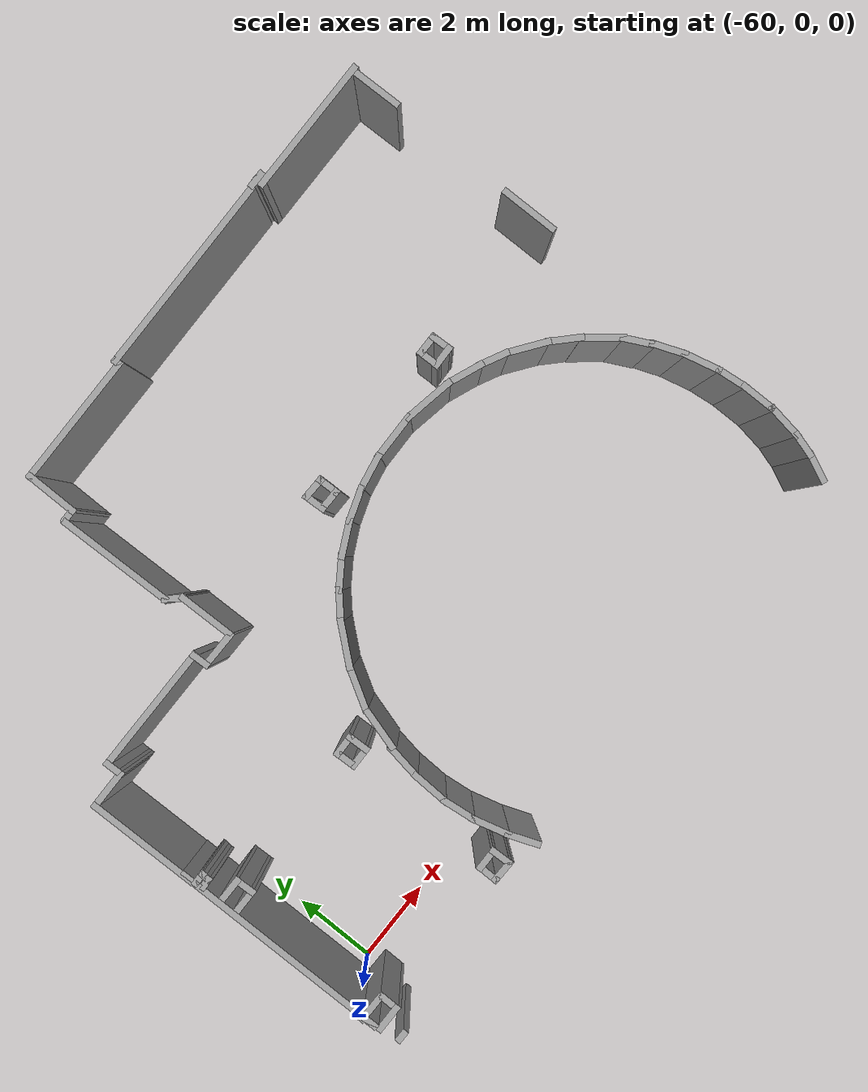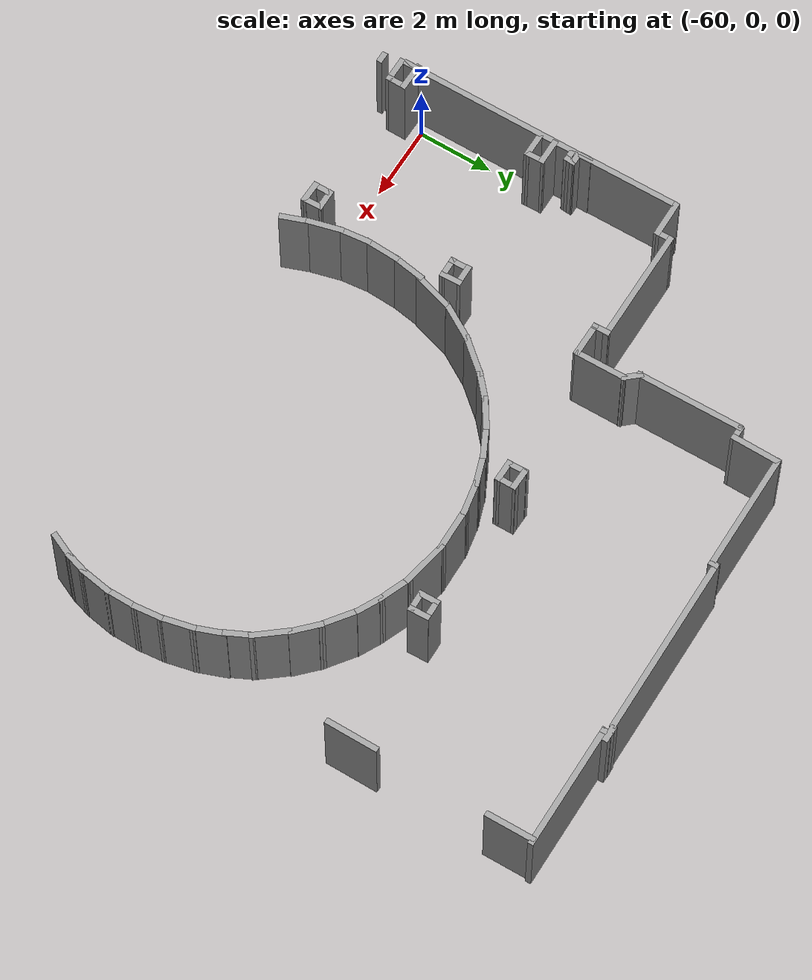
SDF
<sdf version="1.7">
 <model name="TD1-Mapa">
  <pose>-6.249136 -5.50363 0 0 -0 0</pose>
  <link name="Wall_155">
   <collision name="Wall_155_Collision">
    <geometry><box><size>0.3083373 0.15 2.5</size></box></geometry>
    <pose>0 0 1.25 0 -0 0</pose>
   </collision>
   <visual name="Wall_155_Visual">
    <pose>0 0 1.25 0 -0 0</pose>
    <geometry><box><size>0.3083373 0.15 2.5</size></box></geometry>
    <material>
     <script><uri>file://media/materials/scripts/gazebo.material</uri><name>Gazebo/Grey</name></script>
     <ambient>1 1 1 1</ambient>
    </material>
    <meta><layer>0</layer></meta>
   </visual>
   <pose>-53.88823 4.284538 0 0 -0 3.141539</pose>
  </link>
  <link name="Wall_157">
   <collision name="Wall_157_Collision">
    <geometry><box><size>0.7059333 0.15 2.5</size></box></geometry>
    <pose>0 0 1.25 0 -0 0</pose>
   </collision>
   <visual name="Wall_157_Visual">
    <pose>0 0 1.25 0 -0 0</pose>
    <geometry><box><size>0.7059333 0.15 2.5</size></box></geometry>
    <material>
     <script><uri>file://media/materials/scripts/gazebo.material</uri><name>Gazebo/Grey</name></script>
     <ambient>1 1 1 1</ambient>
    </material>
    <meta><layer>0</layer></meta>
   </visual>
   <pose>-53.76383 4.750032 0 0 -0 0</pose>
  </link>
  <link name="Wall_158">
   <collision name="Wall_158_Collision">
    <geometry><box><size>0.5670303 0.15 2.5</size></box></geometry>
    <pose>0 0 1.25 0 -0 0</pose>
   </collision>
   <visual name="Wall_158_Visual">
    <pose>0 0 1.25 0 -0 0</pose>
    <geometry><box><size>0.5670303 0.15 2.5</size></box></geometry>
    <material>
     <script><uri>file://media/materials/scripts/gazebo.material</uri><name>Gazebo/Grey</name></script>
     <ambient>1 1 1 1</ambient>
    </material>
    <meta><layer>0</layer></meta>
   </visual>
   <pose>-53.48263 4.958439 0 0 -0 1.555239</pose>
  </link>
  <link name="Wall_159">
   <collision name="Wall_159_Collision">
    <geometry><box><size>0.7835343 0.15 2.5</size></box></geometry>
    <pose>0 0 1.25 0 -0 0</pose>
   </collision>
   <visual name="Wall_159_Visual">
    <pose>0 0 1.25 0 -0 0</pose>
    <geometry><box><size>0.7835343 0.15 2.5</size></box></geometry>
    <material>
     <script><uri>file://media/materials/scripts/gazebo.material</uri><name>Gazebo/Grey</name></script>
     <ambient>1 1 1 1</ambient>
    </material>
    <meta><layer>0</layer></meta>
   </visual>
   <pose>-53.79613 5.171832 0 0 -0 3.126239</pose>
  </link>
  <link name="Wall_162">
   <collision name="Wall_162_Collision">
    <geometry><box><size>0.5508303 0.15 2.5</size></box></geometry>
    <pose>0 0 1.25 0 -0 0</pose>
   </collision>
   <visual name="Wall_162_Visual">
    <pose>0 0 1.25 0 -0 0</pose>
    <geometry><box><size>0.5508303 0.15 2.5</size></box></geometry>
    <material>
     <script><uri>file://media/materials/scripts/gazebo.material</uri><name>Gazebo/Grey</name></script>
     <ambient>1 1 1 1</ambient>
    </material>
    <meta><layer>0</layer></meta>
   </visual>
   <pose>-54.074235 5.082933 0 0 -0 1.578836</pose>
  </link>
  <link name="Wall_166">
   <collision name="Wall_166_Collision">
    <geometry><box><size>5.365332 0.15 2.5</size></box></geometry>
    <pose>0 0 1.25 0 -0 0</pose>
   </collision>
   <visual name="Wall_166_Visual">
    <pose>0 0 1.25 0 -0 0</pose>
    <geometry><box><size>5.365332 0.15 2.5</size></box></geometry>
    <material>
     <script><uri>file://media/materials/scripts/gazebo.material</uri><name>Gazebo/Grey</name></script>
     <ambient>1 1 1 1</ambient>
    </material>
    <meta><layer>0</layer></meta>
   </visual>
   <pose>-54.07433 7.49023 0 0 -0 -1.569936</pose>
  </link>
  <link name="Wall_169">
   <collision name="Wall_169_Collision">
    <geometry><box><size>0.3019333 0.15 2.5</size></box></geometry>
    <pose>0 0 1.25 0 -0 0</pose>
   </collision>
   <visual name="Wall_169_Visual">
    <pose>0 0 1.25 0 -0 0</pose>
    <geometry><box><size>0.3019333 0.15 2.5</size></box></geometry>
    <material>
     <script><uri>file://media/materials/scripts/gazebo.material</uri><name>Gazebo/Grey</name></script>
     <ambient>1 1 1 1</ambient>
    </material>
    <meta><layer>0</layer></meta>
   </visual>
   <pose>-53.82243 9.706438 0 0 -0 -1.644135</pose>
  </link>
  <link name="Wall_170">
   <collision name="Wall_170_Collision">
    <geometry><box><size>0.3436333 0.15 2.5</size></box></geometry>
    <pose>0 0 1.25 0 -0 0</pose>
   </collision>
   <visual name="Wall_170_Visual">
    <pose>0 0 1.25 0 -0 0</pose>
    <geometry><box><size>0.3436333 0.15 2.5</size></box></geometry>
    <material>
     <script><uri>file://media/materials/scripts/gazebo.material</uri><name>Gazebo/Grey</name></script>
     <ambient>1 1 1 1</ambient>
    </material>
    <meta><layer>0</layer></meta>
   </visual>
   <pose>-53.92463 9.624931 0 0 -0 -3.082834</pose>
  </link>
  <link name="Wall_173">
   <collision name="Wall_173_Collision">
    <geometry><box><size>0.3916333 0.15 2.5</size></box></geometry>
    <pose>0 0 1.25 0 -0 0</pose>
   </collision>
   <visual name="Wall_173_Visual">
    <pose>0 0 1.25 0 -0 0</pose>
    <geometry><box><size>0.3916333 0.15 2.5</size></box></geometry>
    <material>
     <script><uri>file://media/materials/scripts/gazebo.material</uri><name>Gazebo/Grey</name></script>
     <ambient>1 1 1 1</ambient>
    </material>
    <meta><layer>0</layer></meta>
   </visual>
   <pose>-53.93463 9.796237 0 0 -0 0.0153383</pose>
  </link>
  <link name="Wall_175">
   <collision name="Wall_175_Collision">
    <geometry><box><size>0.7298363 0.15 2.5</size></box></geometry>
    <pose>0 0 1.25 0 -0 0</pose>
   </collision>
   <visual name="Wall_175_Visual">
    <pose>0 0 1.25 0 -0 0</pose>
    <geometry><box><size>0.7298363 0.15 2.5</size></box></geometry>
    <material>
     <script><uri>file://media/materials/scripts/gazebo.material</uri><name>Gazebo/Grey</name></script>
     <ambient>1 1 1 1</ambient>
    </material>
    <meta><layer>0</layer></meta>
   </visual>
   <pose>-53.75063 9.129036 0 0 -0 0</pose>
  </link>
  <link name="Wall_176">
   <collision name="Wall_176_Collision">
    <geometry><box><size>0.5515393 0.15 2.5</size></box></geometry>
    <pose>0 0 1.25 0 -0 0</pose>
   </collision>
   <visual name="Wall_176_Visual">
    <pose>0 0 1.25 0 -0 0</pose>
    <geometry><box><size>0.5515393 0.15 2.5</size></box></geometry>
    <material>
     <script><uri>file://media/materials/scripts/gazebo.material</uri><name>Gazebo/Grey</name></script>
     <ambient>1 1 1 1</ambient>
    </material>
    <meta><layer>0</layer></meta>
   </visual>
   <pose>-53.45513 8.928334 0 0 -0 -1.543033</pose>
  </link>
  <link name="Wall_177">
   <collision name="Wall_177_Collision">
    <geometry><box><size>0.7112373 0.15 2.5</size></box></geometry>
    <pose>0 0 1.25 0 -0 0</pose>
   </collision>
   <visual name="Wall_177_Visual">
    <pose>0 0 1.25 0 -0 0</pose>
    <geometry><box><size>0.7112373 0.15 2.5</size></box></geometry>
    <material>
     <script><uri>file://media/materials/scripts/gazebo.material</uri><name>Gazebo/Grey</name></script>
     <ambient>1 1 1 1</ambient>
    </material>
    <meta><layer>0</layer></meta>
   </visual>
   <pose>-53.73013 8.727632 0 0 -0 3.141539</pose>
  </link>
  <link name="Wall_179">
   <collision name="Wall_179_Collision">
    <geometry><box><size>2.78163 0.15 2.5</size></box></geometry>
    <pose>0 0 1.25 0 -0 0</pose>
   </collision>
   <visual name="Wall_179_Visual">
    <pose>0 0 1.25 0 -0 0</pose>
    <geometry><box><size>2.78163 0.15 2.5</size></box></geometry>
    <material>
     <script><uri>file://media/materials/scripts/gazebo.material</uri><name>Gazebo/Grey</name></script>
     <ambient>1 1 1 1</ambient>
    </material>
    <meta><layer>0</layer></meta>
   </visual>
   <pose>-54.09353 11.20193 0 0 -0 -1.565038</pose>
  </link>
  <link name="Wall_181">
   <collision name="Wall_181_Collision">
    <geometry><box><size>1.031938 0.15 2.5</size></box></geometry>
    <pose>0 0 1.25 0 -0 0</pose>
   </collision>
   <visual name="Wall_181_Visual">
    <pose>0 0 1.25 0 -0 0</pose>
    <geometry><box><size>1.031938 0.15 2.5</size></box></geometry>
    <material>
     <script><uri>file://media/materials/scripts/gazebo.material</uri><name>Gazebo/Grey</name></script>
     <ambient>1 1 1 1</ambient>
    </material>
    <meta><layer>0</layer></meta>
   </visual>
   <pose>-53.66 12.52073 0 0 -0 0.0067373</pose>
  </link>
  <link name="Wall_182">
   <collision name="Wall_182_Collision">
    <geometry><box><size>0.4990353 0.15 2.5</size></box></geometry>
    <pose>0 0 1.25 0 -0 0</pose>
   </collision>
   <visual name="Wall_182_Visual">
    <pose>0 0 1.25 0 -0 0</pose>
    <geometry><box><size>0.4990353 0.15 2.5</size></box></geometry>
    <material>
     <script><uri>file://media/materials/scripts/gazebo.material</uri><name>Gazebo/Grey</name></script>
     <ambient>1 1 1 1</ambient>
    </material>
    <meta><layer>0</layer></meta>
   </visual>
   <pose>-53.22153 12.69823 0 0 -0 1.584838</pose>
  </link>
  <link name="Wall_183">
   <collision name="Wall_183_Collision">
    <geometry><box><size>3.133932 0.15 2.5</size></box></geometry>
    <pose>0 0 1.25 0 -0 0</pose>
   </collision>
   <visual name="Wall_183_Visual">
    <pose>0 0 1.25 0 -0 0</pose>
    <geometry><box><size>3.133932 0.15 2.5</size></box></geometry>
    <material>
     <script><uri>file://media/materials/scripts/gazebo.material</uri><name>Gazebo/Grey</name></script>
     <ambient>1 1 1 1</ambient>
    </material>
    <meta><layer>0</layer></meta>
   </visual>
   <pose>-51.732 12.86773 0 0 -0 -0.0032393</pose>
  </link>
  <link name="Wall_184">
   <collision name="Wall_184_Collision">
    <geometry><box><size>0.4795303 0.15 2.5</size></box></geometry>
    <pose>0 0 1.25 0 -0 0</pose>
   </collision>
   <visual name="Wall_184_Visual">
    <pose>0 0 1.25 0 -0 0</pose>
    <geometry><box><size>0.4795303 0.15 2.5</size></box></geometry>
    <material>
     <script><uri>file://media/materials/scripts/gazebo.material</uri><name>Gazebo/Grey</name></script>
     <ambient>1 1 1 1</ambient>
    </material>
    <meta><layer>0</layer></meta>
   </visual>
   <pose>-50.24523 12.69823 0 0 -0 -1.540935</pose>
  </link>
  <link name="Wall_185">
   <collision name="Wall_185_Collision">
    <geometry><box><size>0.9611363 0.15 2.5</size></box></geometry>
    <pose>0 0 1.25 0 -0 0</pose>
   </collision>
   <visual name="Wall_185_Visual">
    <pose>0 0 1.25 0 -0 0</pose>
    <geometry><box><size>0.9611363 0.15 2.5</size></box></geometry>
    <material>
     <script><uri>file://media/materials/scripts/gazebo.material</uri><name>Gazebo/Grey</name></script>
     <ambient>1 1 1 1</ambient>
    </material>
    <meta><layer>0</layer></meta>
   </visual>
   <pose>-49.82473 12.52863 0 0 -0 -0.0121323</pose>
  </link>
  <link name="Wall_187">
   <collision name="Wall_187_Collision">
    <geometry><box><size>1.389434 0.15 2.5</size></box></geometry>
    <pose>0 0 1.25 0 -0 0</pose>
   </collision>
   <visual name="Wall_187_Visual">
    <pose>0 0 1.25 0 -0 0</pose>
    <geometry><box><size>1.389434 0.15 2.5</size></box></geometry>
    <material>
     <script><uri>file://media/materials/scripts/gazebo.material</uri><name>Gazebo/Grey</name></script>
     <ambient>1 1 1 1</ambient>
    </material>
    <meta><layer>0</layer></meta>
   </visual>
   <pose>-49.41843 13.19363 0 0 -0 1.579937</pose>
  </link>
  <link name="Wall_188">
   <collision name="Wall_188_Collision">
    <geometry><box><size>0.5447303 0.15 2.5</size></box></geometry>
    <pose>0 0 1.25 0 -0 0</pose>
   </collision>
   <visual name="Wall_188_Visual">
    <pose>0 0 1.25 0 -0 0</pose>
    <geometry><box><size>0.5447303 0.15 2.5</size></box></geometry>
    <material>
     <script><uri>file://media/materials/scripts/gazebo.material</uri><name>Gazebo/Grey</name></script>
     <ambient>1 1 1 1</ambient>
    </material>
    <meta><layer>0</layer></meta>
   </visual>
   <pose>-49.55483 13.96123 0 0 -0 2.295035</pose>
  </link>
  <link name="Wall_189">
   <collision name="Wall_189_Collision">
    <geometry><box><size>2.856339 0.15 2.5</size></box></geometry>
    <pose>0 0 1.25 0 -0 0</pose>
   </collision>
   <visual name="Wall_189_Visual">
    <pose>0 0 1.25 0 -0 0</pose>
    <geometry><box><size>2.856339 0.15 2.5</size></box></geometry>
    <material>
     <script><uri>file://media/materials/scripts/gazebo.material</uri><name>Gazebo/Grey</name></script>
     <ambient>1 1 1 1</ambient>
    </material>
    <meta><layer>0</layer></meta>
   </visual>
   <pose>-49.70263 15.45073 0 0 -0 1.58343</pose>
  </link>
  <link name="Wall_192">
   <collision name="Wall_192_Collision">
    <geometry><box><size>0.411637 0.15 2.5</size></box></geometry>
    <pose>0 0 1.25 0 -0 0</pose>
   </collision>
   <visual name="Wall_192_Visual">
    <pose>0 0 1.25 0 -0 0</pose>
    <geometry><box><size>0.411637 0.15 2.5</size></box></geometry>
    <material>
     <script><uri>file://media/materials/scripts/gazebo.material</uri><name>Gazebo/Grey</name></script>
     <ambient>1 1 1 1</ambient>
    </material>
    <meta><layer>0</layer></meta>
   </visual>
   <pose>-49.56023 16.84133 0 0 -0 0</pose>
  </link>
  <link name="Wall_193">
   <collision name="Wall_193_Collision">
    <geometry><box><size>1.323837 0.15 2.5</size></box></geometry>
    <pose>0 0 1.25 0 -0 0</pose>
   </collision>
   <visual name="Wall_193_Visual">
    <pose>0 0 1.25 0 -0 0</pose>
    <geometry><box><size>1.323837 0.15 2.5</size></box></geometry>
    <material>
     <script><uri>file://media/materials/scripts/gazebo.material</uri><name>Gazebo/Grey</name></script>
     <ambient>1 1 1 1</ambient>
    </material>
    <meta><layer>0</layer></meta>
   </visual>
   <pose>-49.42193 17.42823 0 0 -0 1.558036</pose>
  </link>
  <link name="Wall_194">
   <collision name="Wall_194_Collision">
    <geometry><box><size>3.240233 0.15 2.5</size></box></geometry>
    <pose>0 0 1.25 0 -0 0</pose>
   </collision>
   <visual name="Wall_194_Visual">
    <pose>0 0 1.25 0 -0 0</pose>
    <geometry><box><size>3.240233 0.15 2.5</size></box></geometry>
    <material>
     <script><uri>file://media/materials/scripts/gazebo.material</uri><name>Gazebo/Grey</name></script>
     <ambient>1 1 1 1</ambient>
    </material>
    <meta><layer>0</layer></meta>
   </visual>
   <pose>-47.87433 18.01513 0 0 -0 0</pose>
  </link>
  <link name="Wall_195">
   <collision name="Wall_195_Collision">
    <geometry><box><size>0.2546363 0.15 2.5</size></box></geometry>
    <pose>0 0 1.25 0 -0 0</pose>
   </collision>
   <visual name="Wall_195_Visual">
    <pose>0 0 1.25 0 -0 0</pose>
    <geometry><box><size>0.2546363 0.15 2.5</size></box></geometry>
    <material>
     <script><uri>file://media/materials/scripts/gazebo.material</uri><name>Gazebo/Grey</name></script>
     <ambient>1 1 1 1</ambient>
    </material>
    <meta><layer>0</layer></meta>
   </visual>
   <pose>-46.33423 18.06753 0 0 -0 1.57083</pose>
  </link>
  <link name="Wall_196">
   <collision name="Wall_196_Collision">
    <geometry><box><size>4.852539 0.15 2.5</size></box></geometry>
    <pose>0 0 1.25 0 -0 0</pose>
   </collision>
   <visual name="Wall_196_Visual">
    <pose>0 0 1.25 0 -0 0</pose>
    <geometry><box><size>4.852539 0.15 2.5</size></box></geometry>
    <material>
     <script><uri>file://media/materials/scripts/gazebo.material</uri><name>Gazebo/Grey</name></script>
     <ambient>1 1 1 1</ambient>
    </material>
    <meta><layer>0</layer></meta>
   </visual>
   <pose>-43.98293 18.12353 0 0 -0 0.001539</pose>
  </link>
  <link name="Wall_198">
   <collision name="Wall_198_Collision">
    <geometry><box><size>0.4490353 0.15 2.5</size></box></geometry>
    <pose>0 0 1.25 0 -0 0</pose>
   </collision>
   <visual name="Wall_198_Visual">
    <pose>0 0 1.25 0 -0 0</pose>
    <geometry><box><size>0.4490353 0.15 2.5</size></box></geometry>
    <material>
     <script><uri>file://media/materials/scripts/gazebo.material</uri><name>Gazebo/Grey</name></script>
     <ambient>1 1 1 1</ambient>
    </material>
    <meta><layer>0</layer></meta>
   </visual>
   <pose>-41.39243 18.15723 0 0 -0 0</pose>
  </link>
  <link name="Wall_203">
   <collision name="Wall_203_Collision">
    <geometry><box><size>0.3076313 0.15 2.5</size></box></geometry>
    <pose>0 0 1.25 0 -0 0</pose>
   </collision>
   <visual name="Wall_203_Visual">
    <pose>0 0 1.25 0 -0 0</pose>
    <geometry><box><size>0.3076313 0.15 2.5</size></box></geometry>
    <material>
     <script><uri>file://media/materials/scripts/gazebo.material</uri><name>Gazebo/Grey</name></script>
     <ambient>1 1 1 1</ambient>
    </material>
    <meta><layer>0</layer></meta>
   </visual>
   <pose>-41.39223 18.08623 0 0 -0 -1.57083</pose>
  </link>
  <link name="Wall_204">
   <collision name="Wall_204_Collision">
    <geometry><box><size>3.340335 0.15 2.5</size></box></geometry>
    <pose>0 0 1.25 0 -0 0</pose>
   </collision>
   <visual name="Wall_204_Visual">
    <pose>0 0 1.25 0 -0 0</pose>
    <geometry><box><size>3.340335 0.15 2.5</size></box></geometry>
    <material>
     <script><uri>file://media/materials/scripts/gazebo.material</uri><name>Gazebo/Grey</name></script>
     <ambient>1 1 1 1</ambient>
    </material>
    <meta><layer>0</layer></meta>
   </visual>
   <pose>-39.79713 18.00513 0 0 -0 -0.0015343</pose>
  </link>
  <link name="Wall_206">
   <collision name="Wall_206_Collision">
    <geometry><box><size>1.30533 0.15 2.5</size></box></geometry>
    <pose>0 0 1.25 0 -0 0</pose>
   </collision>
   <visual name="Wall_206_Visual">
    <pose>0 0 1.25 0 -0 0</pose>
    <geometry><box><size>1.30533 0.15 2.5</size></box></geometry>
    <material>
     <script><uri>file://media/materials/scripts/gazebo.material</uri><name>Gazebo/Grey</name></script>
     <ambient>1 1 1 1</ambient>
    </material>
    <meta><layer>0</layer></meta>
   </visual>
   <pose>-38.25353 17.39563 0 0 -0 -1.558033</pose>
  </link>
  <link name="Wall_215">
   <collision name="Wall_215_Collision">
    <geometry><box><size>1.410635 0.15 2.5</size></box></geometry>
    <pose>0 0 1.25 0 -0 0</pose>
   </collision>
   <visual name="Wall_215_Visual">
    <pose>0 0 1.25 0 -0 0</pose>
    <geometry><box><size>1.410635 0.15 2.5</size></box></geometry>
    <material>
     <script><uri>file://media/materials/scripts/gazebo.material</uri><name>Gazebo/Grey</name></script>
     <ambient>1 1 1 1</ambient>
    </material>
    <meta><layer>0</layer></meta>
   </visual>
   <pose>-38.26843 13.15043 0 0 -0 -1.57083</pose>
  </link>
  <link name="Wall_241">
   <collision name="Wall_241_Collision">
    <geometry><box><size>0.5996393 0.15 2.5</size></box></geometry>
    <pose>0 0 1.25 0 -0 0</pose>
   </collision>
   <visual name="Wall_241_Visual">
    <pose>0 0 1.25 0 -0 0</pose>
    <geometry><box><size>0.5996393 0.15 2.5</size></box></geometry>
    <material>
     <script><uri>file://media/materials/scripts/gazebo.material</uri><name>Gazebo/Grey</name></script>
     <ambient>1 1 1 1</ambient>
    </material>
    <meta><layer>0</layer></meta>
   </visual>
   <pose>-49.77363 5.207336 0 0 -0 0</pose>
  </link>
  <link name="Wall_242">
   <collision name="Wall_242_Collision">
    <geometry><box><size>0.5773363 0.15 2.5</size></box></geometry>
    <pose>0 0 1.25 0 -0 0</pose>
   </collision>
   <visual name="Wall_242_Visual">
    <pose>0 0 1.25 0 -0 0</pose>
    <geometry><box><size>0.5773363 0.15 2.5</size></box></geometry>
    <material>
     <script><uri>file://media/materials/scripts/gazebo.material</uri><name>Gazebo/Grey</name></script>
     <ambient>1 1 1 1</ambient>
    </material>
    <meta><layer>0</layer></meta>
   </visual>
   <pose>-49.54313 4.993735 0 0 -0 -1.544439</pose>
  </link>
  <link name="Wall_243">
   <collision name="Wall_243_Collision">
    <geometry><box><size>0.6117393 0.15 2.5</size></box></geometry>
    <pose>0 0 1.25 0 -0 0</pose>
   </collision>
   <visual name="Wall_243_Visual">
    <pose>0 0 1.25 0 -0 0</pose>
    <geometry><box><size>0.6117393 0.15 2.5</size></box></geometry>
    <material>
     <script><uri>file://media/materials/scripts/gazebo.material</uri><name>Gazebo/Grey</name></script>
     <ambient>1 1 1 1</ambient>
    </material>
    <meta><layer>0</layer></meta>
   </visual>
   <pose>-49.768 4.785737 0 0 -0 3.117231</pose>
  </link>
  <link name="Wall_244">
   <collision name="Wall_244_Collision">
    <geometry><box><size>0.5154323 0.15 2.5</size></box></geometry>
    <pose>0 0 1.25 0 -0 0</pose>
   </collision>
   <visual name="Wall_244_Visual">
    <pose>0 0 1.25 0 -0 0</pose>
    <geometry><box><size>0.5154323 0.15 2.5</size></box></geometry>
    <material>
     <script><uri>file://media/materials/scripts/gazebo.material</uri><name>Gazebo/Grey</name></script>
     <ambient>1 1 1 1</ambient>
    </material>
    <meta><layer>0</layer></meta>
   </visual>
   <pose>-49.99573 4.97973 0 0 -0 1.555431</pose>
  </link>
  <link name="Wall_246">
   <collision name="Wall_246_Collision">
    <geometry><box><size>0.591039 0.15 2.5</size></box></geometry>
    <pose>0 0 1.25 0 -0 0</pose>
   </collision>
   <visual name="Wall_246_Visual">
    <pose>0 0 1.25 0 -0 0</pose>
    <geometry><box><size>0.591039 0.15 2.5</size></box></geometry>
    <material>
     <script><uri>file://media/materials/scripts/gazebo.material</uri><name>Gazebo/Grey</name></script>
     <ambient>1 1 1 1</ambient>
    </material>
    <meta><layer>0</layer></meta>
   </visual>
   <pose>-49.76263 9.135137 0 0 -0 0.0256333</pose>
  </link>
  <link name="Wall_247">
   <collision name="Wall_247_Collision">
    <geometry><box><size>0.5796333 0.15 2.5</size></box></geometry>
    <pose>0 0 1.25 0 -0 0</pose>
   </collision>
   <visual name="Wall_247_Visual">
    <pose>0 0 1.25 0 -0 0</pose>
    <geometry><box><size>0.5796333 0.15 2.5</size></box></geometry>
    <material>
     <script><uri>file://media/materials/scripts/gazebo.material</uri><name>Gazebo/Grey</name></script>
     <ambient>1 1 1 1</ambient>
    </material>
    <meta><layer>0</layer></meta>
   </visual>
   <pose>-49.53653 8.926 0 0 -0 -1.544439</pose>
  </link>
  <link name="Wall_248">
   <collision name="Wall_248_Collision">
    <geometry><box><size>0.5854353 0.15 2.5</size></box></geometry>
    <pose>0 0 1.25 0 -0 0</pose>
   </collision>
   <visual name="Wall_248_Visual">
    <pose>0 0 1.25 0 -0 0</pose>
    <geometry><box><size>0.5854353 0.15 2.5</size></box></geometry>
    <material>
     <script><uri>file://media/materials/scripts/gazebo.material</uri><name>Gazebo/Grey</name></script>
     <ambient>1 1 1 1</ambient>
    </material>
    <meta><layer>0</layer></meta>
   </visual>
   <pose>-49.74863 8.708731 0 0 -0 -3.130235</pose>
  </link>
  <link name="Wall_249">
   <collision name="Wall_249_Collision">
    <geometry><box><size>0.5453383 0.15 2.5</size></box></geometry>
    <pose>0 0 1.25 0 -0 0</pose>
   </collision>
   <visual name="Wall_249_Visual">
    <pose>0 0 1.25 0 -0 0</pose>
    <geometry><box><size>0.5453383 0.15 2.5</size></box></geometry>
    <material>
     <script><uri>file://media/materials/scripts/gazebo.material</uri><name>Gazebo/Grey</name></script>
     <ambient>1 1 1 1</ambient>
    </material>
    <meta><layer>0</layer></meta>
   </visual>
   <pose>-49.97193 8.903836 0 0 -0 1.599036</pose>
  </link>
  <link name="Wall_251">
   <collision name="Wall_251_Collision">
    <geometry><box><size>0.6048353 0.15 2.5</size></box></geometry>
    <pose>0 0 1.25 0 -0 0</pose>
   </collision>
   <visual name="Wall_251_Visual">
    <pose>0 0 1.25 0 -0 0</pose>
    <geometry><box><size>0.6048353 0.15 2.5</size></box></geometry>
    <material>
     <script><uri>file://media/materials/scripts/gazebo.material</uri><name>Gazebo/Grey</name></script>
     <ambient>1 1 1 1</ambient>
    </material>
    <meta><layer>0</layer></meta>
   </visual>
   <pose>-45.82993 13.074537 0 0 -0 -0.0325303</pose>
  </link>
  <link name="Wall_252">
   <collision name="Wall_252_Collision">
    <geometry><box><size>0.5713363 0.15 2.5</size></box></geometry>
    <pose>0 0 1.25 0 -0 0</pose>
   </collision>
   <visual name="Wall_252_Visual">
    <pose>0 0 1.25 0 -0 0</pose>
    <geometry><box><size>0.5713363 0.15 2.5</size></box></geometry>
    <material>
     <script><uri>file://media/materials/scripts/gazebo.material</uri><name>Gazebo/Grey</name></script>
     <ambient>1 1 1 1</ambient>
    </material>
    <meta><layer>0</layer></meta>
   </visual>
   <pose>-45.60083 12.86143 0 0 -0 -1.562032</pose>
  </link>
  <link name="Wall_253">
   <collision name="Wall_253_Collision">
    <geometry><box><size>0.6046373 0.15 2.5</size></box></geometry>
    <pose>0 0 1.25 0 -0 0</pose>
   </collision>
   <visual name="Wall_253_Visual">
    <pose>0 0 1.25 0 -0 0</pose>
    <geometry><box><size>0.6046373 0.15 2.5</size></box></geometry>
    <material>
     <script><uri>file://media/materials/scripts/gazebo.material</uri><name>Gazebo/Grey</name></script>
     <ambient>1 1 1 1</ambient>
    </material>
    <meta><layer>0</layer></meta>
   </visual>
   <pose>-45.82623 12.65073 0 0 -0 3.125333</pose>
  </link>
  <link name="Wall_254">
   <collision name="Wall_254_Collision">
    <geometry><box><size>0.575139 0.15 2.5</size></box></geometry>
    <pose>0 0 1.25 0 -0 0</pose>
   </collision>
   <visual name="Wall_254_Visual">
    <pose>0 0 1.25 0 -0 0</pose>
    <geometry><box><size>0.575139 0.15 2.5</size></box></geometry>
    <material>
     <script><uri>file://media/materials/scripts/gazebo.material</uri><name>Gazebo/Grey</name></script>
     <ambient>1 1 1 1</ambient>
    </material>
    <meta><layer>0</layer></meta>
   </visual>
   <pose>-46.06093 12.86693 0 0 -0 1.605536</pose>
  </link>
  <link name="Wall_256">
   <collision name="Wall_256_Collision">
    <geometry><box><size>0.574831 0.15 2.5</size></box></geometry>
    <pose>0 0 1.25 0 -0 0</pose>
   </collision>
   <visual name="Wall_256_Visual">
    <pose>0 0 1.25 0 -0 0</pose>
    <geometry><box><size>0.574831 0.15 2.5</size></box></geometry>
    <material>
     <script><uri>file://media/materials/scripts/gazebo.material</uri><name>Gazebo/Grey</name></script>
     <ambient>1 1 1 1</ambient>
    </material>
    <meta><layer>0</layer></meta>
   </visual>
   <pose>-41.90143 13.07413 0 0 -0 0.0065373</pose>
  </link>
  <link name="Wall_257">
   <collision name="Wall_257_Collision">
    <geometry><box><size>0.5638353 0.15 2.5</size></box></geometry>
    <pose>0 0 1.25 0 -0 0</pose>
   </collision>
   <visual name="Wall_257_Visual">
    <pose>0 0 1.25 0 -0 0</pose>
    <geometry><box><size>0.5638353 0.15 2.5</size></box></geometry>
    <material>
     <script><uri>file://media/materials/scripts/gazebo.material</uri><name>Gazebo/Grey</name></script>
     <ambient>1 1 1 1</ambient>
    </material>
    <meta><layer>0</layer></meta>
   </visual>
   <pose>-41.67923 12.86563 0 0 -0 -1.537033</pose>
  </link>
  <link name="Wall_258">
   <collision name="Wall_258_Collision">
    <geometry><box><size>0.5889313 0.15 2.5</size></box></geometry>
    <pose>0 0 1.25 0 -0 0</pose>
   </collision>
   <visual name="Wall_258_Visual">
    <pose>0 0 1.25 0 -0 0</pose>
    <geometry><box><size>0.5889313 0.15 2.5</size></box></geometry>
    <material>
     <script><uri>file://media/materials/scripts/gazebo.material</uri><name>Gazebo/Grey</name></script>
     <ambient>1 1 1 1</ambient>
    </material>
    <meta><layer>0</layer></meta>
   </visual>
   <pose>-41.89443 12.65323 0 0 -0 -3.116132</pose>
  </link>
  <link name="Wall_259">
   <collision name="Wall_259_Collision">
    <geometry><box><size>0.5692343 0.15 2.5</size></box></geometry>
    <pose>0 0 1.25 0 -0 0</pose>
   </collision>
   <visual name="Wall_259_Visual">
    <pose>0 0 1.25 0 -0 0</pose>
    <geometry><box><size>0.5692343 0.15 2.5</size></box></geometry>
    <material>
     <script><uri>file://media/materials/scripts/gazebo.material</uri><name>Gazebo/Grey</name></script>
     <ambient>1 1 1 1</ambient>
    </material>
    <meta><layer>0</layer></meta>
   </visual>
   <pose>-42.11383 12.85723 0 0 -0 1.584133</pose>
  </link>
  <link name="Wall_272">
   <collision name="Wall_272_Collision">
    <geometry><box><size>1.051438 0.15 2.5</size></box></geometry>
    <pose>0 0 1.25 0 -0 0</pose>
   </collision>
   <visual name="Wall_272_Visual">
    <pose>0 0 1.25 0 -0 0</pose>
    <geometry><box><size>1.051438 0.15 2.5</size></box></geometry>
    <material>
     <script><uri>file://media/materials/scripts/gazebo.material</uri><name>Gazebo/Grey</name></script>
     <ambient>1 1 1 1</ambient>
    </material>
    <meta><layer>0</layer></meta>
   </visual>
   <pose>-49.01393 8.743 0 0 -0 1.280031</pose>
  </link>
  <link name="Wall_274">
   <collision name="Wall_274_Collision">
    <geometry><box><size>1.13843 0.15 2.5</size></box></geometry>
    <pose>0 0 1.25 0 -0 0</pose>
   </collision>
   <visual name="Wall_274_Visual">
    <pose>0 0 1.25 0 -0 0</pose>
    <geometry><box><size>1.13843 0.15 2.5</size></box></geometry>
    <material>
     <script><uri>file://media/materials/scripts/gazebo.material</uri><name>Gazebo/Grey</name></script>
     <ambient>1 1 1 1</ambient>
    </material>
    <meta><layer>0</layer></meta>
   </visual>
   <pose>-48.619 9.661939 0 0 -0 1.031634</pose>
  </link>
  <link name="Wall_275">
   <collision name="Wall_275_Collision">
    <geometry><box><size>1.152535 0.15 2.5</size></box></geometry>
    <pose>0 0 1.25 0 -0 0</pose>
   </collision>
   <visual name="Wall_275_Visual">
    <pose>0 0 1.25 0 -0 0</pose>
    <geometry><box><size>1.152535 0.15 2.5</size></box></geometry>
    <material>
     <script><uri>file://media/materials/scripts/gazebo.material</uri><name>Gazebo/Grey</name></script>
     <ambient>1 1 1 1</ambient>
    </material>
    <meta><layer>0</layer></meta>
   </visual>
   <pose>-48.039 10.46673 0 0 -0 0.862137</pose>
  </link>
  <link name="Wall_276">
   <collision name="Wall_276_Collision">
    <geometry><box><size>0.817636 0.15 2.5</size></box></geometry>
    <pose>0 0 1.25 0 -0 0</pose>
   </collision>
   <visual name="Wall_276_Visual">
    <pose>0 0 1.25 0 -0 0</pose>
    <geometry><box><size>0.817636 0.15 2.5</size></box></geometry>
    <material>
     <script><uri>file://media/materials/scripts/gazebo.material</uri><name>Gazebo/Grey</name></script>
     <ambient>1 1 1 1</ambient>
    </material>
    <meta><layer>0</layer></meta>
   </visual>
   <pose>-47.46273 11.06843 0 0 -0 0.7239333</pose>
  </link>
  <link name="Wall_277">
   <collision name="Wall_277_Collision">
    <geometry><box><size>0.8818373 0.15 2.5</size></box></geometry>
    <pose>0 0 1.25 0 -0 0</pose>
   </collision>
   <visual name="Wall_277_Visual">
    <pose>0 0 1.25 0 -0 0</pose>
    <geometry><box><size>0.8818373 0.15 2.5</size></box></geometry>
    <material>
     <script><uri>file://media/materials/scripts/gazebo.material</uri><name>Gazebo/Grey</name></script>
     <ambient>1 1 1 1</ambient>
    </material>
    <meta><layer>0</layer></meta>
   </visual>
   <pose>-46.90813 11.49253 0 0 -0 0.5880303</pose>
  </link>
  <link name="Wall_279">
   <collision name="Wall_279_Collision">
    <geometry><box><size>0.9197303 0.15 2.5</size></box></geometry>
    <pose>0 0 1.25 0 -0 0</pose>
   </collision>
   <visual name="Wall_279_Visual">
    <pose>0 0 1.25 0 -0 0</pose>
    <geometry><box><size>0.9197303 0.15 2.5</size></box></geometry>
    <material>
     <script><uri>file://media/materials/scripts/gazebo.material</uri><name>Gazebo/Grey</name></script>
     <ambient>1 1 1 1</ambient>
    </material>
    <meta><layer>0</layer></meta>
   </visual>
   <pose>-46.25773 11.86413 0 0 -0 0.45373</pose>
  </link>
  <link name="Wall_280">
   <collision name="Wall_280_Collision">
    <geometry><box><size>0.8971313 0.15 2.5</size></box></geometry>
    <pose>0 0 1.25 0 -0 0</pose>
   </collision>
   <visual name="Wall_280_Visual">
    <pose>0 0 1.25 0 -0 0</pose>
    <geometry><box><size>0.8971313 0.15 2.5</size></box></geometry>
    <material>
     <script><uri>file://media/materials/scripts/gazebo.material</uri><name>Gazebo/Grey</name></script>
     <ambient>1 1 1 1</ambient>
    </material>
    <meta><layer>0</layer></meta>
   </visual>
   <pose>-45.55743 12.151 0 0 -0 0.3217353</pose>
  </link>
  <link name="Wall_281">
   <collision name="Wall_281_Collision">
    <geometry><box><size>0.9337323 0.15 2.5</size></box></geometry>
    <pose>0 0 1.25 0 -0 0</pose>
   </collision>
   <visual name="Wall_281_Visual">
    <pose>0 0 1.25 0 -0 0</pose>
    <geometry><box><size>0.9337323 0.15 2.5</size></box></geometry>
    <material>
     <script><uri>file://media/materials/scripts/gazebo.material</uri><name>Gazebo/Grey</name></script>
     <ambient>1 1 1 1</ambient>
    </material>
    <meta><layer>0</layer></meta>
   </visual>
   <pose>-44.81753 12.33953 0 0 -0 0.18083</pose>
  </link>
  <link name="Wall_282">
   <collision name="Wall_282_Collision">
    <geometry><box><size>1.207032 0.15 2.5</size></box></geometry>
    <pose>0 0 1.25 0 -0 0</pose>
   </collision>
   <visual name="Wall_282_Visual">
    <pose>0 0 1.25 0 -0 0</pose>
    <geometry><box><size>1.207032 0.15 2.5</size></box></geometry>
    <material>
     <script><uri>file://media/materials/scripts/gazebo.material</uri><name>Gazebo/Grey</name></script>
     <ambient>1 1 1 1</ambient>
    </material>
    <meta><layer>0</layer></meta>
   </visual>
   <pose>-43.90363 12.41623 0 0 -0 0.0117363</pose>
  </link>
  <link name="Wall_283">
   <collision name="Wall_283_Collision">
    <geometry><box><size>1.288931 0.15 2.5</size></box></geometry>
    <pose>0 0 1.25 0 -0 0</pose>
   </collision>
   <visual name="Wall_283_Visual">
    <pose>0 0 1.25 0 -0 0</pose>
    <geometry><box><size>1.288931 0.15 2.5</size></box></geometry>
    <material>
     <script><uri>file://media/materials/scripts/gazebo.material</uri><name>Gazebo/Grey</name></script>
     <ambient>1 1 1 1</ambient>
    </material>
    <meta><layer>0</layer></meta>
   </visual>
   <pose>-42.81553 12.31473 0 0 -0 -0.1902363</pose>
  </link>
  <link name="Wall_284">
   <collision name="Wall_284_Collision">
    <geometry><box><size>0.9458363 0.15 2.5</size></box></geometry>
    <pose>0 0 1.25 0 -0 0</pose>
   </collision>
   <visual name="Wall_284_Visual">
    <pose>0 0 1.25 0 -0 0</pose>
    <geometry><box><size>0.9458363 0.15 2.5</size></box></geometry>
    <material>
     <script><uri>file://media/materials/scripts/gazebo.material</uri><name>Gazebo/Grey</name></script>
     <ambient>1 1 1 1</ambient>
    </material>
    <meta><layer>0</layer></meta>
   </visual>
   <pose>-41.88713 12.05773 0 0 -0 -0.3843373</pose>
  </link>
  <link name="Wall_285">
   <collision name="Wall_285_Collision">
    <geometry><box><size>0.7506313 0.15 2.5</size></box></geometry>
    <pose>0 0 1.25 0 -0 0</pose>
   </collision>
   <visual name="Wall_285_Visual">
    <pose>0 0 1.25 0 -0 0</pose>
    <geometry><box><size>0.7506313 0.15 2.5</size></box></geometry>
    <material>
     <script><uri>file://media/materials/scripts/gazebo.material</uri><name>Gazebo/Grey</name></script>
     <ambient>1 1 1 1</ambient>
    </material>
    <meta><layer>0</layer></meta>
   </visual>
   <pose>-41.25083 11.77173 0 0 -0 -0.4729303</pose>
  </link>
  <link name="Wall_287">
   <collision name="Wall_287_Collision">
    <geometry><box><size>0.9972323 0.15 2.5</size></box></geometry>
    <pose>0 0 1.25 0 -0 0</pose>
   </collision>
   <visual name="Wall_287_Visual">
    <pose>0 0 1.25 0 -0 0</pose>
    <geometry><box><size>0.9972323 0.15 2.5</size></box></geometry>
    <material>
     <script><uri>file://media/materials/scripts/gazebo.material</uri><name>Gazebo/Grey</name></script>
     <ambient>1 1 1 1</ambient>
    </material>
    <meta><layer>0</layer></meta>
   </visual>
   <pose>-40.57313 11.33233 0 0 -0 -0.6395383</pose>
  </link>
  <link name="Wall_288">
   <collision name="Wall_288_Collision">
    <geometry><box><size>0.8681323 0.15 2.5</size></box></geometry>
    <pose>0 0 1.25 0 -0 0</pose>
   </collision>
   <visual name="Wall_288_Visual">
    <pose>0 0 1.25 0 -0 0</pose>
    <geometry><box><size>0.8681323 0.15 2.5</size></box></geometry>
    <material>
     <script><uri>file://media/materials/scripts/gazebo.material</uri><name>Gazebo/Grey</name></script>
     <ambient>1 1 1 1</ambient>
    </material>
    <meta><layer>0</layer></meta>
   </visual>
   <pose>-39.97633 10.82873 0 0 -0 -0.7731353</pose>
  </link>
  <link name="Wall_291">
   <collision name="Wall_291_Collision">
    <geometry><box><size>1.020031 0.15 2.5</size></box></geometry>
    <pose>0 0 1.25 0 -0 0</pose>
   </collision>
   <visual name="Wall_291_Visual">
    <pose>0 0 1.25 0 -0 0</pose>
    <geometry><box><size>1.020031 0.15 2.5</size></box></geometry>
    <material>
     <script><uri>file://media/materials/scripts/gazebo.material</uri><name>Gazebo/Grey</name></script>
     <ambient>1 1 1 1</ambient>
    </material>
    <meta><layer>0</layer></meta>
   </visual>
   <pose>-39.431838 10.20193 0 0 -0 -0.8967393</pose>
  </link>
  <link name="Wall_292">
   <collision name="Wall_292_Collision">
    <geometry><box><size>0.7635383 0.15 2.5</size></box></geometry>
    <pose>0 0 1.25 0 -0 0</pose>
   </collision>
   <visual name="Wall_292_Visual">
    <pose>0 0 1.25 0 -0 0</pose>
    <geometry><box><size>0.7635383 0.15 2.5</size></box></geometry>
    <material>
     <script><uri>file://media/materials/scripts/gazebo.material</uri><name>Gazebo/Grey</name></script>
     <ambient>1 1 1 1</ambient>
    </material>
    <meta><layer>0</layer></meta>
   </visual>
   <pose>-39.03263 9.586431 0 0 -0 -1.116231</pose>
  </link>
  <link name="Wall_294">
   <collision name="Wall_294_Collision">
    <geometry><box><size>0.8805393 0.15 2.5</size></box></geometry>
    <pose>0 0 1.25 0 -0 0</pose>
   </collision>
   <visual name="Wall_294_Visual">
    <pose>0 0 1.25 0 -0 0</pose>
    <geometry><box><size>0.8805393 0.15 2.5</size></box></geometry>
    <material>
     <script><uri>file://media/materials/scripts/gazebo.material</uri><name>Gazebo/Grey</name></script>
     <ambient>1 1 1 1</ambient>
    </material>
    <meta><layer>0</layer></meta>
   </visual>
   <pose>-38.74043 8.94813 0 0 -0 -1.211336</pose>
  </link>
  <link name="Wall_295">
   <collision name="Wall_295_Collision">
    <geometry><box><size>0.9412383 0.15 2.5</size></box></geometry>
    <pose>0 0 1.25 0 -0 0</pose>
   </collision>
   <visual name="Wall_295_Visual">
    <pose>0 0 1.25 0 -0 0</pose>
    <geometry><box><size>0.9412383 0.15 2.5</size></box></geometry>
    <material>
     <script><uri>file://media/materials/scripts/gazebo.material</uri><name>Gazebo/Grey</name></script>
     <ambient>1 1 1 1</ambient>
    </material>
    <meta><layer>0</layer></meta>
   </visual>
   <pose>-38.52283 8.220637 0 0 -0 -1.34363</pose>
  </link>
  <link name="Wall_297">
   <collision name="Wall_297_Collision">
    <geometry><box><size>0.7917353 0.15 2.5</size></box></geometry>
    <pose>0 0 1.25 0 -0 0</pose>
   </collision>
   <visual name="Wall_297_Visual">
    <pose>0 0 1.25 0 -0 0</pose>
    <geometry><box><size>0.7917353 0.15 2.5</size></box></geometry>
    <material>
     <script><uri>file://media/materials/scripts/gazebo.material</uri><name>Gazebo/Grey</name></script>
     <ambient>1 1 1 1</ambient>
    </material>
    <meta><layer>0</layer></meta>
   </visual>
   <pose>-38.39643 7.482837 0 0 -0 -1.467237</pose>
  </link>
  <link name="Wall_298">
   <collision name="Wall_298_Collision">
    <geometry><box><size>0.8836343 0.15 2.5</size></box></geometry>
    <pose>0 0 1.25 0 -0 0</pose>
   </collision>
   <visual name="Wall_298_Visual">
    <pose>0 0 1.25 0 -0 0</pose>
    <geometry><box><size>0.8836343 0.15 2.5</size></box></geometry>
    <material>
     <script><uri>file://media/materials/scripts/gazebo.material</uri><name>Gazebo/Grey</name></script>
     <ambient>1 1 1 1</ambient>
    </material>
    <meta><layer>0</layer></meta>
   </visual>
   <pose>-38.36533 6.796839 0 0 -0 -1.576435</pose>
  </link>
  <link name="Wall_301">
   <collision name="Wall_301_Collision">
    <geometry><box><size>0.9281343 0.15 2.5</size></box></geometry>
    <pose>0 0 1.25 0 -0 0</pose>
   </collision>
   <visual name="Wall_301_Visual">
    <pose>0 0 1.25 0 -0 0</pose>
    <geometry><box><size>0.9281343 0.15 2.5</size></box></geometry>
    <material>
     <script><uri>file://media/materials/scripts/gazebo.material</uri><name>Gazebo/Grey</name></script>
     <ambient>1 1 1 1</ambient>
    </material>
    <meta><layer>0</layer></meta>
   </visual>
   <pose>-38.42693 6.020639 0 0 -0 -1.736935</pose>
  </link>
  <link name="Wall_302">
   <collision name="Wall_302_Collision">
    <geometry><box><size>0.6550313 0.15 2.5</size></box></geometry>
    <pose>0 0 1.25 0 -0 0</pose>
   </collision>
   <visual name="Wall_302_Visual">
    <pose>0 0 1.25 0 -0 0</pose>
    <geometry><box><size>0.6550313 0.15 2.5</size></box></geometry>
    <material>
     <script><uri>file://media/materials/scripts/gazebo.material</uri><name>Gazebo/Grey</name></script>
     <ambient>1 1 1 1</ambient>
    </material>
    <meta><layer>0</layer></meta>
   </visual>
   <pose>-38.56753 5.396236 0 0 -0 -1.877632</pose>
  </link>
  <link name="Wall_303">
   <collision name="Wall_303_Collision">
    <geometry><box><size>0.7685363 0.15 2.5</size></box></geometry>
    <pose>0 0 1.25 0 -0 0</pose>
   </collision>
   <visual name="Wall_303_Visual">
    <pose>0 0 1.25 0 -0 0</pose>
    <geometry><box><size>0.7685363 0.15 2.5</size></box></geometry>
    <material>
     <script><uri>file://media/materials/scripts/gazebo.material</uri><name>Gazebo/Grey</name></script>
     <ambient>1 1 1 1</ambient>
    </material>
    <meta><layer>0</layer></meta>
   </visual>
   <pose>-38.76773 4.874331 0 0 -0 -1.999938</pose>
  </link>
  <link name="Wall_325">
   <collision name="Wall_325_Collision">
    <geometry><box><size>0.9256333 0.15 2.5</size></box></geometry>
    <pose>0 0 1.25 0 -0 0</pose>
   </collision>
   <visual name="Wall_325_Visual">
    <pose>0 0 1.25 0 -0 0</pose>
    <geometry><box><size>0.9256333 0.15 2.5</size></box></geometry>
    <material>
     <script><uri>file://media/materials/scripts/gazebo.material</uri><name>Gazebo/Grey</name></script>
     <ambient>1 1 1 1</ambient>
    </material>
    <meta><layer>0</layer></meta>
   </visual>
   <pose>-49.24773 7.90073 0 0 -0 -1.735935</pose>
  </link>
  <link name="Wall_326">
   <collision name="Wall_326_Collision">
    <geometry><box><size>0.9664383 0.15 2.5</size></box></geometry>
    <pose>0 0 1.25 0 -0 0</pose>
   </collision>
   <visual name="Wall_326_Visual">
    <pose>0 0 1.25 0 -0 0</pose>
    <geometry><box><size>0.9664383 0.15 2.5</size></box></geometry>
    <material>
     <script><uri>file://media/materials/scripts/gazebo.material</uri><name>Gazebo/Grey</name></script>
     <ambient>1 1 1 1</ambient>
    </material>
    <meta><layer>0</layer></meta>
   </visual>
   <pose>-49.33063 7.110131 0 0 -0 -1.617634</pose>
  </link>
  <link name="Wall_327">
   <collision name="Wall_327_Collision">
    <geometry><box><size>0.8808343 0.15 2.5</size></box></geometry>
    <pose>0 0 1.25 0 -0 0</pose>
   </collision>
   <visual name="Wall_327_Visual">
    <pose>0 0 1.25 0 -0 0</pose>
    <geometry><box><size>0.8808343 0.15 2.5</size></box></geometry>
    <material>
     <script><uri>file://media/materials/scripts/gazebo.material</uri><name>Gazebo/Grey</name></script>
     <ambient>1 1 1 1</ambient>
    </material>
    <meta><layer>0</layer></meta>
   </visual>
   <pose>-49.31153 6.338636 0 0 -0 -1.465932</pose>
  </link>
  <link name="Wall_328">
   <collision name="Wall_328_Collision">
    <geometry><box><size>0.9664383 0.15 2.5</size></box></geometry>
    <pose>0 0 1.25 0 -0 0</pose>
   </collision>
   <visual name="Wall_328_Visual">
    <pose>0 0 1.25 0 -0 0</pose>
    <geometry><box><size>0.9664383 0.15 2.5</size></box></geometry>
    <material>
     <script><uri>file://media/materials/scripts/gazebo.material</uri><name>Gazebo/Grey</name></script>
     <ambient>1 1 1 1</ambient>
    </material>
    <meta><layer>0</layer></meta>
   </visual>
   <pose>-49.17123 5.579935 0 0 -0 -1.318234</pose>
  </link>
  <link name="Wall_329">
   <collision name="Wall_329_Collision">
    <geometry><box><size>0.8156343 0.15 2.5</size></box></geometry>
    <pose>0 0 1.25 0 -0 0</pose>
   </collision>
   <visual name="Wall_329_Visual">
    <pose>0 0 1.25 0 -0 0</pose>
    <geometry><box><size>0.8156343 0.15 2.5</size></box></geometry>
    <material>
     <script><uri>file://media/materials/scripts/gazebo.material</uri><name>Gazebo/Grey</name></script>
     <ambient>1 1 1 1</ambient>
    </material>
    <meta><layer>0</layer></meta>
   </visual>
   <pose>-48.95453 4.872235 0 0 -0 -1.218735</pose>
  </link>
  <static>1</static>
 </model>
</sdf>
